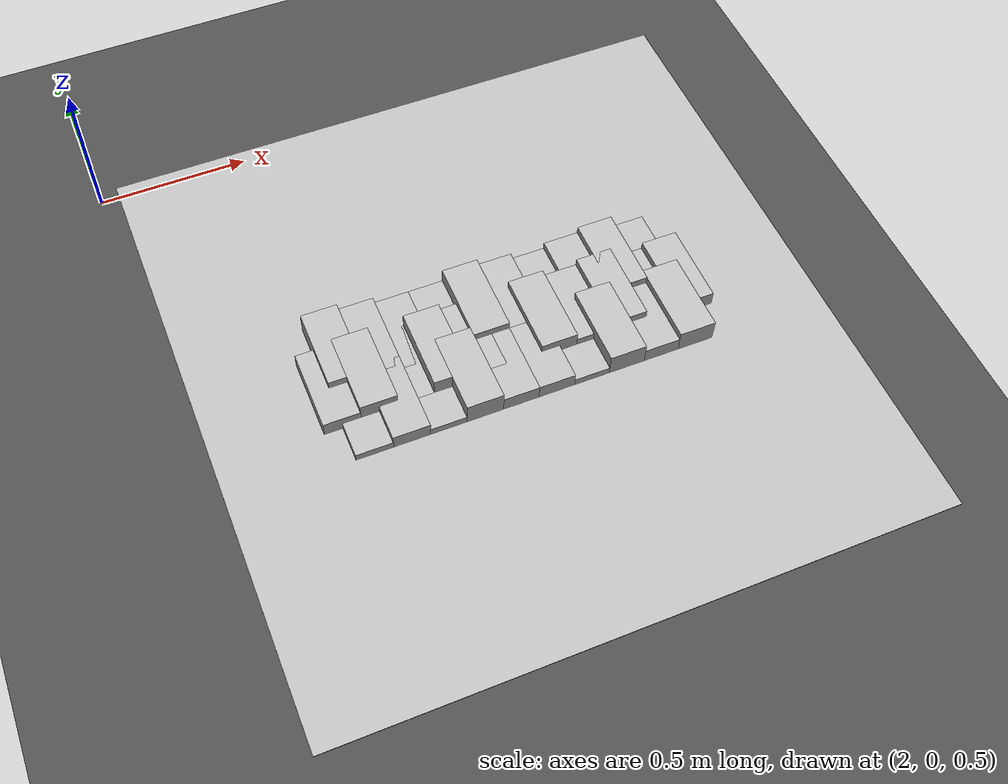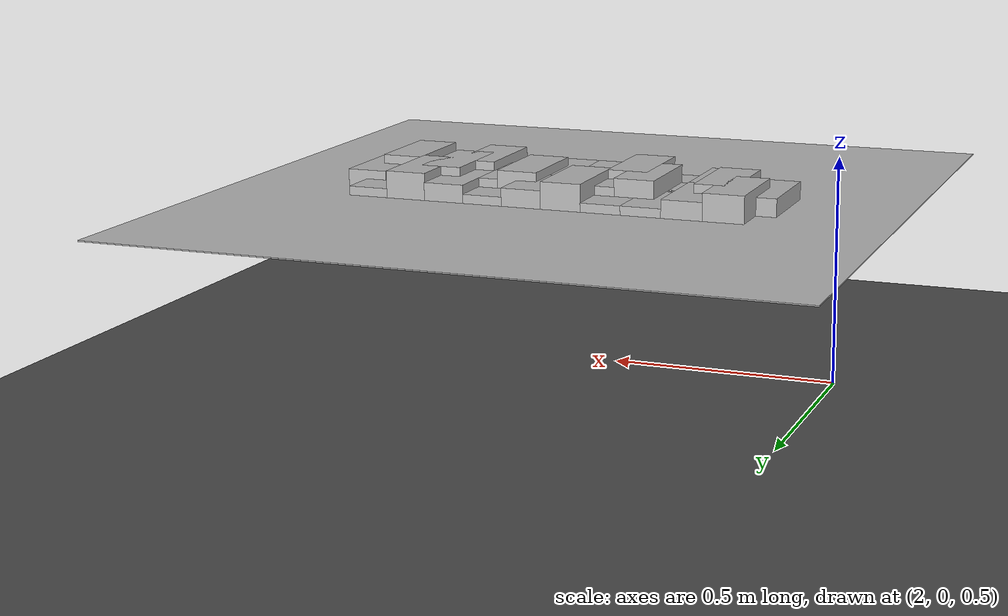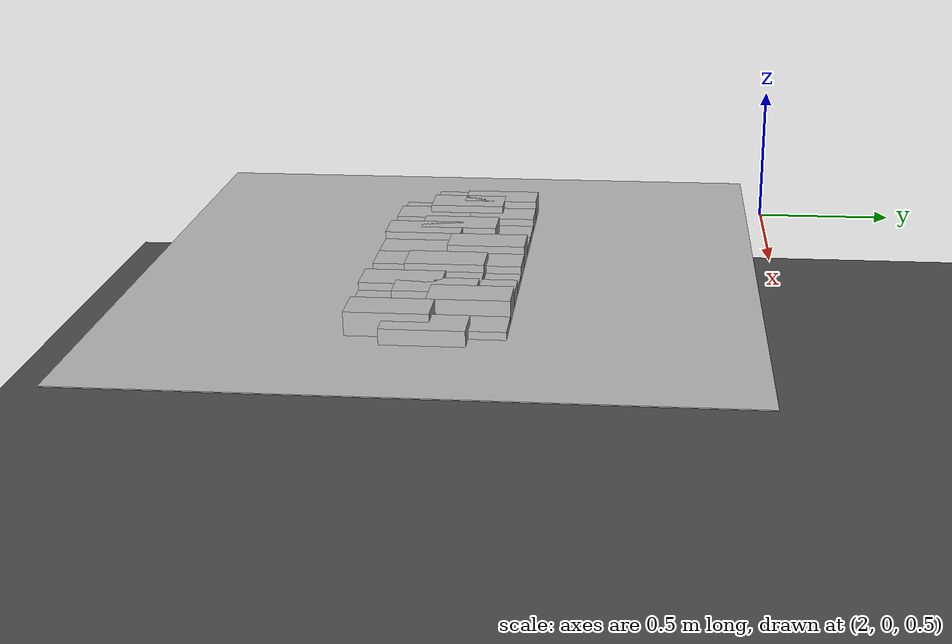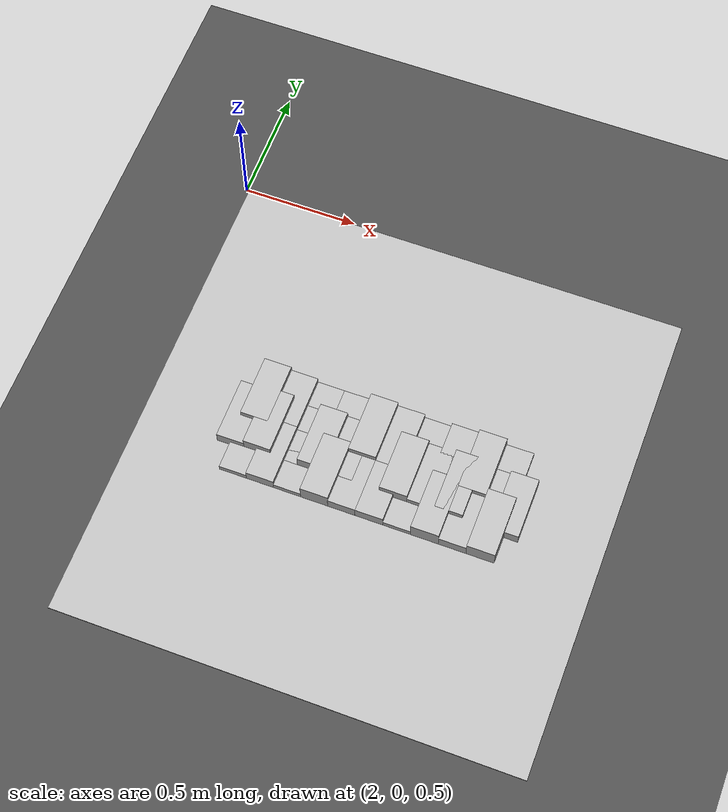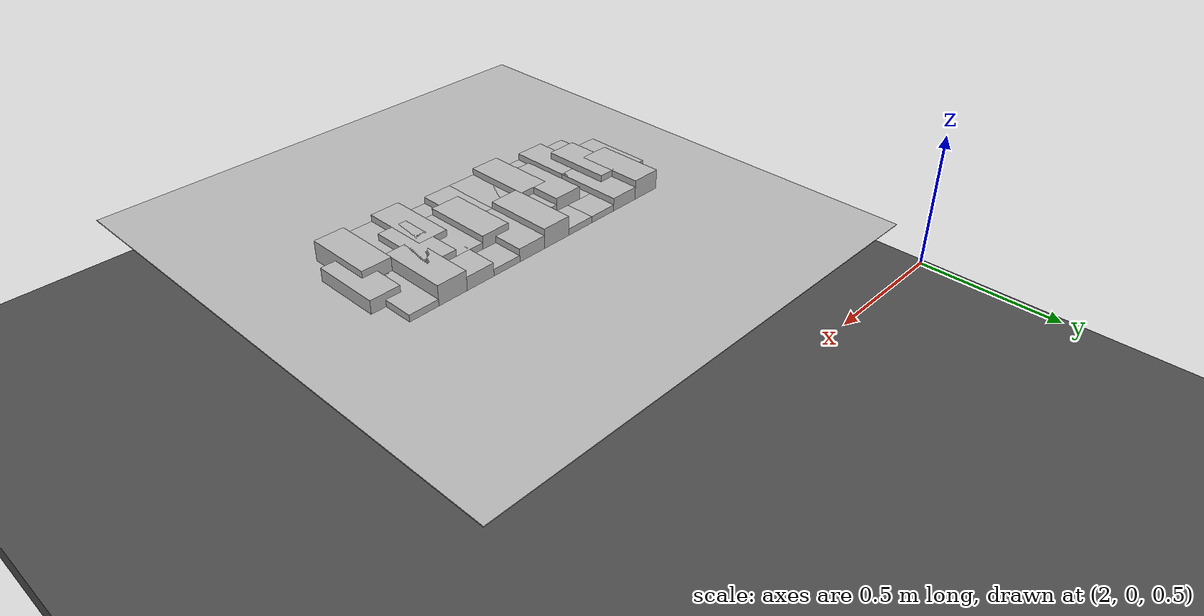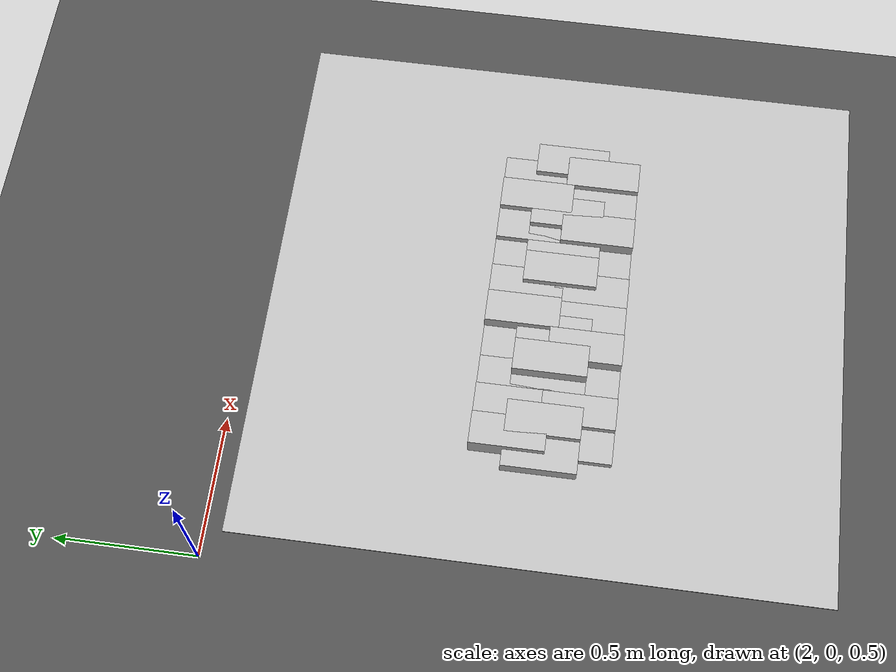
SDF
<sdf version="1.6">
 <world name="default">
  <model name="ground_plane">
   <static>1</static>
   <link name="link">
    <collision name="collision">
     <geometry><plane><normal>0 0 1</normal><size>100 100</size></plane></geometry>
     <surface><friction><ode><mu>100</mu><mu2>50</mu2></ode></friction></surface>
    </collision>
    <visual name="visual">
     <cast_shadows>0</cast_shadows>
     <geometry><plane><normal>0 0 1</normal><size>100 100</size></plane></geometry>
     <material>
      <script><uri>file://media/materials/scripts/gazebo.material</uri><name>Gazebo/Grey</name></script>
     </material>
    </visual>
   </link>
  </model>
  <model name="frc2016_roughterrain_0">
   <link name="link_clone_24">
    <pose>3.11638 -1.12587 -0.073164 0 -0 0</pose>
    <inertial>
     <inertia><ixx>nan</ixx><ixy>0</ixy><ixz>0</ixz><iyy>nan</iyy><iyz>0</iyz><izz>nan</izz></inertia>
     <mass>0</mass>
    </inertial>
    <visual name="row1_block5_md">
     <pose>0.05715 0.1143 0.10968 0 -0 0</pose>
     <geometry><box><size>0.115452 0.257474 0.0508</size></box></geometry>
     <material><shader type="pixel"/></material>
    </visual>
    <visual name="row1_block4_sm">
     <pose>0.17145 0.1143 0.09698 0 -0 0</pose>
     <geometry><box><size>0.115452 0.257474 0.0254</size></box></geometry>
     <material><shader type="pixel"/></material>
    </visual>
    <visual name="platform">
     <pose>0 0 0.08269 0 -0 0</pose>
     <geometry><box><size>1.91826 2.01688 0.003175</size></box></geometry>
     <material><shader type="pixel"/></material>
    </visual>
    <visual name="row1_block1_sm">
     <pose>0.51435 0.1143 0.09698 0 -0 0</pose>
     <geometry><box><size>0.115452 0.257474 0.0254</size></box></geometry>
     <material><shader type="pixel"/></material>
    </visual>
    <visual name="row1_block2_lg">
     <pose>0.40005 0.1143 0.12238 0 -0 0</pose>
     <geometry><box><size>0.115452 0.257474 0.0762</size></box></geometry>
     <material><shader type="pixel"/></material>
    </visual>
    <visual name="row1_block3_md">
     <pose>0.28575 0.1143 0.10968 0 -0 0</pose>
     <geometry><box><size>0.115452 0.257474 0.0508</size></box></geometry>
     <material><shader type="pixel"/></material>
    </visual>
    <visual name="row1_block6_lg">
     <pose>-0.05715 0.1143 0.12238 0 -0 0</pose>
     <geometry><box><size>0.115452 0.257474 0.0762</size></box></geometry>
     <material><shader type="pixel"/></material>
    </visual>
    <visual name="row1_block8_sm">
     <pose>-0.28575 0.1143 0.09698 0 -0 0</pose>
     <geometry><box><size>0.115452 0.257474 0.0254</size></box></geometry>
     <material><shader type="pixel"/></material>
    </visual>
    <visual name="row1_block7_sm">
     <pose>-0.17145 0.1143 0.09698 0 -0 0</pose>
     <geometry><box><size>0.115452 0.257474 0.0254</size></box></geometry>
     <material><shader type="pixel"/></material>
    </visual>
    <visual name="row1_block9_md">
     <pose>-0.40005 0.1143 0.10968 0 -0 0</pose>
     <geometry><box><size>0.115452 0.257474 0.0508</size></box></geometry>
     <material><shader type="pixel"/></material>
    </visual>
    <visual name="row1_block10_lg">
     <pose>-0.51435 0.1143 0.12238 0 -0 0</pose>
     <geometry><box><size>0.115452 0.257474 0.0762</size></box></geometry>
     <material><shader type="pixel"/></material>
    </visual>
    <visual name="row2_block1_md">
     <pose>0.5715 0 0.10968 0 -0 0</pose>
     <geometry><box><size>0.115452 0.257474 0.0508</size></box></geometry>
     <material><shader type="pixel"/></material>
    </visual>
    <visual name="row2_block2_sm">
     <pose>0.4572 0 0.09698 0 -0 0</pose>
     <geometry><box><size>0.115452 0.257474 0.0254</size></box></geometry>
     <material><shader type="pixel"/></material>
    </visual>
    <visual name="row2_block3_lg">
     <pose>0.3429 0 0.12238 0 -0 0</pose>
     <geometry><box><size>0.115452 0.257474 0.0762</size></box></geometry>
     <material><shader type="pixel"/></material>
    </visual>
    <visual name="row2_block4_md">
     <pose>0.2286 0 0.10968 0 -0 0</pose>
     <geometry><box><size>0.115452 0.257474 0.0508</size></box></geometry>
     <material><shader type="pixel"/></material>
    </visual>
    <visual name="row2_block5_lg">
     <pose>0.1143 0 0.12238 0 -0 0</pose>
     <geometry><box><size>0.115452 0.257474 0.0762</size></box></geometry>
     <material><shader type="pixel"/></material>
    </visual>
    <visual name="row2_block6_sm">
     <pose>0 0 0.09698 0 -0 0</pose>
     <geometry><box><size>0.115452 0.257474 0.0254</size></box></geometry>
     <material><shader type="pixel"/></material>
    </visual>
    <visual name="row2_block7_md">
     <pose>-0.1143 0 0.10968 0 -0 0</pose>
     <geometry><box><size>0.115452 0.257474 0.0508</size></box></geometry>
     <material><shader type="pixel"/></material>
    </visual>
    <visual name="row2_block8_lg">
     <pose>-0.2286 0 0.12238 0 -0 0</pose>
     <geometry><box><size>0.115452 0.257474 0.0762</size></box></geometry>
     <material><shader type="pixel"/></material>
    </visual>
    <visual name="row2_block9_sm">
     <pose>-0.3429 0 0.09698 0 -0 0</pose>
     <geometry><box><size>0.115452 0.257474 0.0254</size></box></geometry>
     <material><shader type="pixel"/></material>
    </visual>
    <visual name="row2_block10_lg">
     <pose>-0.4572 0 0.12238 0 -0 0</pose>
     <geometry><box><size>0.115452 0.257474 0.0762</size></box></geometry>
     <material><shader type="pixel"/></material>
    </visual>
    <visual name="row2_block11_md">
     <pose>-0.5715 0 0.10968 0 -0 0</pose>
     <geometry><box><size>0.115452 0.257474 0.0508</size></box></geometry>
     <material><shader type="pixel"/></material>
    </visual>
    <visual name="row3_block2_md">
     <pose>0.40005 -0.1143 0.10968 0 -0 0</pose>
     <geometry><box><size>0.115452 0.257474 0.0508</size></box></geometry>
     <material><shader type="pixel"/></material>
    </visual>
    <visual name="row3_block1_lg">
     <pose>0.51435 -0.1143 0.12238 0 -0 0</pose>
     <geometry><box><size>0.115452 0.257474 0.0762</size></box></geometry>
     <material><shader type="pixel"/></material>
    </visual>
    <visual name="row3_block3_lg">
     <pose>0.28575 -0.1143 0.12238 0 -0 0</pose>
     <geometry><box><size>0.115452 0.257474 0.0762</size></box></geometry>
     <material><shader type="pixel"/></material>
    </visual>
    <visual name="row3_block4_sm">
     <pose>0.17145 -0.1143 0.09698 0 -0 0</pose>
     <geometry><box><size>0.115452 0.257474 0.0254</size></box></geometry>
     <material><shader type="pixel"/></material>
    </visual>
    <visual name="row3_block5_md">
     <pose>0.05715 -0.1143 0.10968 0 -0 0</pose>
     <geometry><box><size>0.115452 0.257474 0.0508</size></box></geometry>
     <material><shader type="pixel"/></material>
    </visual>
    <visual name="row3_block6_md">
     <pose>-0.05715 -0.1143 0.10968 0 -0 0</pose>
     <geometry><box><size>0.115452 0.257474 0.0508</size></box></geometry>
     <material><shader type="pixel"/></material>
    </visual>
    <visual name="row3_block8_sm">
     <pose>-0.28575 -0.1143 0.09698 0 -0 0</pose>
     <geometry><box><size>0.115452 0.257474 0.0254</size></box></geometry>
     <material><shader type="pixel"/></material>
    </visual>
    <visual name="row3_block7_lg">
     <pose>-0.17145 -0.1143 0.12238 0 -0 0</pose>
     <geometry><box><size>0.115452 0.257474 0.0762</size></box></geometry>
     <material><shader type="pixel"/></material>
    </visual>
    <visual name="row3_block9_md">
     <pose>-0.40005 -0.1143 0.10968 0 -0 0</pose>
     <geometry><box><size>0.115452 0.257474 0.0508</size></box></geometry>
     <material><shader type="pixel"/></material>
    </visual>
    <visual name="row3_block10_sm">
     <pose>-0.51435 -0.1143 0.09698 0 -0 0</pose>
     <geometry><box><size>0.115452 0.257474 0.0254</size></box></geometry>
     <material><shader type="pixel"/></material>
    </visual>
    <collision name="row2_block5_lg_0">
     <pose>0.1143 0 0.12238 0 -0 0</pose>
     <geometry><box><size>0.115452 0.257474 0.0762</size></box></geometry>
     <surface>
      <friction>
       <ode><mu>1</mu><mu2>1</mu2><fdir1>0 0 0</fdir1><slip1>0</slip1><slip2>0</slip2></ode>
       <torsional>
        <coefficient>1</coefficient>
        <patch_radius>0</patch_radius>
        <surface_radius>0</surface_radius>
        <use_patch_radius>1</use_patch_radius>
        <ode><slip>0</slip></ode>
       </torsional>
      </friction>
      <bounce><restitution_coefficient>0</restitution_coefficient><threshold>1e+06</threshold></bounce>
      <contact>
       <collide_without_contact>0</collide_without_contact>
       <collide_without_contact_bitmask>1</collide_without_contact_bitmask>
       <collide_bitmask>1</collide_bitmask>
       <ode>
        <soft_cfm>0</soft_cfm>
        <soft_erp>0.2</soft_erp>
        <kp>1e+13</kp>
        <kd>1</kd>
        <max_vel>0.01</max_vel>
        <min_depth>0</min_depth>
       </ode>
       <bullet>
        <split_impulse>1</split_impulse>
        <split_impulse_penetration_threshold>-0.01</split_impulse_penetration_threshold>
        <soft_cfm>0</soft_cfm>
        <soft_erp>0.2</soft_erp>
        <kp>1e+13</kp>
        <kd>1</kd>
       </bullet>
      </contact>
     </surface>
    </collision>
    <collision name="platform_0">
     <pose>0 0 0.08269 0 -0 0</pose>
     <geometry><box><size>1.91826 2.01688 0.003175</size></box></geometry>
     <surface>
      <friction>
       <ode><mu>1</mu><mu2>1</mu2><fdir1>0 0 0</fdir1><slip1>0</slip1><slip2>0</slip2></ode>
       <torsional>
        <coefficient>1</coefficient>
        <patch_radius>0</patch_radius>
        <surface_radius>0</surface_radius>
        <use_patch_radius>1</use_patch_radius>
        <ode><slip>0</slip></ode>
       </torsional>
      </friction>
      <bounce><restitution_coefficient>0</restitution_coefficient><threshold>1e+06</threshold></bounce>
      <contact>
       <collide_without_contact>0</collide_without_contact>
       <collide_without_contact_bitmask>1</collide_without_contact_bitmask>
       <collide_bitmask>1</collide_bitmask>
       <ode>
        <soft_cfm>0</soft_cfm>
        <soft_erp>0.2</soft_erp>
        <kp>1e+13</kp>
        <kd>1</kd>
        <max_vel>0.01</max_vel>
        <min_depth>0</min_depth>
       </ode>
       <bullet>
        <split_impulse>1</split_impulse>
        <split_impulse_penetration_threshold>-0.01</split_impulse_penetration_threshold>
        <soft_cfm>0</soft_cfm>
        <soft_erp>0.2</soft_erp>
        <kp>1e+13</kp>
        <kd>1</kd>
       </bullet>
      </contact>
     </surface>
    </collision>
    <collision name="row1_block1_sm_0">
     <pose>0.51435 0.1143 0.09698 0 -0 0</pose>
     <geometry><box><size>0.115452 0.257474 0.0254</size></box></geometry>
     <surface>
      <friction>
       <ode><mu>1</mu><mu2>1</mu2><fdir1>0 0 0</fdir1><slip1>0</slip1><slip2>0</slip2></ode>
       <torsional>
        <coefficient>1</coefficient>
        <patch_radius>0</patch_radius>
        <surface_radius>0</surface_radius>
        <use_patch_radius>1</use_patch_radius>
        <ode><slip>0</slip></ode>
       </torsional>
      </friction>
      <bounce><restitution_coefficient>0</restitution_coefficient><threshold>1e+06</threshold></bounce>
      <contact>
       <collide_without_contact>0</collide_without_contact>
       <collide_without_contact_bitmask>1</collide_without_contact_bitmask>
       <collide_bitmask>1</collide_bitmask>
       <ode>
        <soft_cfm>0</soft_cfm>
        <soft_erp>0.2</soft_erp>
        <kp>1e+13</kp>
        <kd>1</kd>
        <max_vel>0.01</max_vel>
        <min_depth>0</min_depth>
       </ode>
       <bullet>
        <split_impulse>1</split_impulse>
        <split_impulse_penetration_threshold>-0.01</split_impulse_penetration_threshold>
        <soft_cfm>0</soft_cfm>
        <soft_erp>0.2</soft_erp>
        <kp>1e+13</kp>
        <kd>1</kd>
       </bullet>
      </contact>
     </surface>
    </collision>
    <collision name="row1_block5_md_0">
     <pose>0.05715 0.1143 0.10968 0 -0 0</pose>
     <geometry><box><size>0.115452 0.257474 0.0508</size></box></geometry>
     <surface>
      <friction>
       <ode><mu>1</mu><mu2>1</mu2><fdir1>0 0 0</fdir1><slip1>0</slip1><slip2>0</slip2></ode>
       <torsional>
        <coefficient>1</coefficient>
        <patch_radius>0</patch_radius>
        <surface_radius>0</surface_radius>
        <use_patch_radius>1</use_patch_radius>
        <ode><slip>0</slip></ode>
       </torsional>
      </friction>
      <bounce><restitution_coefficient>0</restitution_coefficient><threshold>1e+06</threshold></bounce>
      <contact>
       <collide_without_contact>0</collide_without_contact>
       <collide_without_contact_bitmask>1</collide_without_contact_bitmask>
       <collide_bitmask>1</collide_bitmask>
       <ode>
        <soft_cfm>0</soft_cfm>
        <soft_erp>0.2</soft_erp>
        <kp>1e+13</kp>
        <kd>1</kd>
        <max_vel>0.01</max_vel>
        <min_depth>0</min_depth>
       </ode>
       <bullet>
        <split_impulse>1</split_impulse>
        <split_impulse_penetration_threshold>-0.01</split_impulse_penetration_threshold>
        <soft_cfm>0</soft_cfm>
        <soft_erp>0.2</soft_erp>
        <kp>1e+13</kp>
        <kd>1</kd>
       </bullet>
      </contact>
     </surface>
    </collision>
    <collision name="row1_block3_md_0">
     <pose>0.28575 0.1143 0.10968 0 -0 0</pose>
     <geometry><box><size>0.115452 0.257474 0.0508</size></box></geometry>
     <surface>
      <friction>
       <ode><mu>1</mu><mu2>1</mu2><fdir1>0 0 0</fdir1><slip1>0</slip1><slip2>0</slip2></ode>
       <torsional>
        <coefficient>1</coefficient>
        <patch_radius>0</patch_radius>
        <surface_radius>0</surface_radius>
        <use_patch_radius>1</use_patch_radius>
        <ode><slip>0</slip></ode>
       </torsional>
      </friction>
      <bounce><restitution_coefficient>0</restitution_coefficient><threshold>1e+06</threshold></bounce>
      <contact>
       <collide_without_contact>0</collide_without_contact>
       <collide_without_contact_bitmask>1</collide_without_contact_bitmask>
       <collide_bitmask>1</collide_bitmask>
       <ode>
        <soft_cfm>0</soft_cfm>
        <soft_erp>0.2</soft_erp>
        <kp>1e+13</kp>
        <kd>1</kd>
        <max_vel>0.01</max_vel>
        <min_depth>0</min_depth>
       </ode>
       <bullet>
        <split_impulse>1</split_impulse>
        <split_impulse_penetration_threshold>-0.01</split_impulse_penetration_threshold>
        <soft_cfm>0</soft_cfm>
        <soft_erp>0.2</soft_erp>
        <kp>1e+13</kp>
        <kd>1</kd>
       </bullet>
      </contact>
     </surface>
    </collision>
    <collision name="row1_block4_sm_0">
     <pose>0.17145 0.1143 0.09698 0 -0 0</pose>
     <geometry><box><size>0.115452 0.257474 0.0254</size></box></geometry>
     <surface>
      <friction>
       <ode><mu>1</mu><mu2>1</mu2><fdir1>0 0 0</fdir1><slip1>0</slip1><slip2>0</slip2></ode>
       <torsional>
        <coefficient>1</coefficient>
        <patch_radius>0</patch_radius>
        <surface_radius>0</surface_radius>
        <use_patch_radius>1</use_patch_radius>
        <ode><slip>0</slip></ode>
       </torsional>
      </friction>
      <bounce><restitution_coefficient>0</restitution_coefficient><threshold>1e+06</threshold></bounce>
      <contact>
       <collide_without_contact>0</collide_without_contact>
       <collide_without_contact_bitmask>1</collide_without_contact_bitmask>
       <collide_bitmask>1</collide_bitmask>
       <ode>
        <soft_cfm>0</soft_cfm>
        <soft_erp>0.2</soft_erp>
        <kp>1e+13</kp>
        <kd>1</kd>
        <max_vel>0.01</max_vel>
        <min_depth>0</min_depth>
       </ode>
       <bullet>
        <split_impulse>1</split_impulse>
        <split_impulse_penetration_threshold>-0.01</split_impulse_penetration_threshold>
        <soft_cfm>0</soft_cfm>
        <soft_erp>0.2</soft_erp>
        <kp>1e+13</kp>
        <kd>1</kd>
       </bullet>
      </contact>
     </surface>
    </collision>
    <collision name="row1_block2_lg_0">
     <pose>0.40005 0.1143 0.12238 0 -0 0</pose>
     <geometry><box><size>0.115452 0.257474 0.0762</size></box></geometry>
     <surface>
      <friction>
       <ode><mu>1</mu><mu2>1</mu2><fdir1>0 0 0</fdir1><slip1>0</slip1><slip2>0</slip2></ode>
       <torsional>
        <coefficient>1</coefficient>
        <patch_radius>0</patch_radius>
        <surface_radius>0</surface_radius>
        <use_patch_radius>1</use_patch_radius>
        <ode><slip>0</slip></ode>
       </torsional>
      </friction>
      <bounce><restitution_coefficient>0</restitution_coefficient><threshold>1e+06</threshold></bounce>
      <contact>
       <collide_without_contact>0</collide_without_contact>
       <collide_without_contact_bitmask>1</collide_without_contact_bitmask>
       <collide_bitmask>1</collide_bitmask>
       <ode>
        <soft_cfm>0</soft_cfm>
        <soft_erp>0.2</soft_erp>
        <kp>1e+13</kp>
        <kd>1</kd>
        <max_vel>0.01</max_vel>
        <min_depth>0</min_depth>
       </ode>
       <bullet>
        <split_impulse>1</split_impulse>
        <split_impulse_penetration_threshold>-0.01</split_impulse_penetration_threshold>
        <soft_cfm>0</soft_cfm>
        <soft_erp>0.2</soft_erp>
        <kp>1e+13</kp>
        <kd>1</kd>
       </bullet>
      </contact>
     </surface>
    </collision>
    <collision name="row1_block6_lg_0">
     <pose>-0.05715 0.1143 0.12238 0 -0 0</pose>
     <geometry><box><size>0.115452 0.257474 0.0762</size></box></geometry>
     <surface>
      <friction>
       <ode><mu>1</mu><mu2>1</mu2><fdir1>0 0 0</fdir1><slip1>0</slip1><slip2>0</slip2></ode>
       <torsional>
        <coefficient>1</coefficient>
        <patch_radius>0</patch_radius>
        <surface_radius>0</surface_radius>
        <use_patch_radius>1</use_patch_radius>
        <ode><slip>0</slip></ode>
       </torsional>
      </friction>
      <bounce><restitution_coefficient>0</restitution_coefficient><threshold>1e+06</threshold></bounce>
      <contact>
       <collide_without_contact>0</collide_without_contact>
       <collide_without_contact_bitmask>1</collide_without_contact_bitmask>
       <collide_bitmask>1</collide_bitmask>
       <ode>
        <soft_cfm>0</soft_cfm>
        <soft_erp>0.2</soft_erp>
        <kp>1e+13</kp>
        <kd>1</kd>
        <max_vel>0.01</max_vel>
        <min_depth>0</min_depth>
       </ode>
       <bullet>
        <split_impulse>1</split_impulse>
        <split_impulse_penetration_threshold>-0.01</split_impulse_penetration_threshold>
        <soft_cfm>0</soft_cfm>
        <soft_erp>0.2</soft_erp>
        <kp>1e+13</kp>
        <kd>1</kd>
       </bullet>
      </contact>
     </surface>
    </collision>
    <collision name="row1_block7_sm_0">
     <pose>-0.17145 0.1143 0.09698 0 -0 0</pose>
     <geometry><box><size>0.115452 0.257474 0.0254</size></box></geometry>
     <surface>
      <friction>
       <ode><mu>1</mu><mu2>1</mu2><fdir1>0 0 0</fdir1><slip1>0</slip1><slip2>0</slip2></ode>
       <torsional>
        <coefficient>1</coefficient>
        <patch_radius>0</patch_radius>
        <surface_radius>0</surface_radius>
        <use_patch_radius>1</use_patch_radius>
        <ode><slip>0</slip></ode>
       </torsional>
      </friction>
      <bounce><restitution_coefficient>0</restitution_coefficient><threshold>1e+06</threshold></bounce>
      <contact>
       <collide_without_contact>0</collide_without_contact>
       <collide_without_contact_bitmask>1</collide_without_contact_bitmask>
       <collide_bitmask>1</collide_bitmask>
       <ode>
        <soft_cfm>0</soft_cfm>
        <soft_erp>0.2</soft_erp>
        <kp>1e+13</kp>
        <kd>1</kd>
        <max_vel>0.01</max_vel>
        <min_depth>0</min_depth>
       </ode>
       <bullet>
        <split_impulse>1</split_impulse>
        <split_impulse_penetration_threshold>-0.01</split_impulse_penetration_threshold>
        <soft_cfm>0</soft_cfm>
        <soft_erp>0.2</soft_erp>
        <kp>1e+13</kp>
        <kd>1</kd>
       </bullet>
      </contact>
     </surface>
    </collision>
    <collision name="row1_block10_lg_0">
     <pose>-0.51435 0.1143 0.12238 0 -0 0</pose>
     <geometry><box><size>0.115452 0.257474 0.0762</size></box></geometry>
     <surface>
      <friction>
       <ode><mu>1</mu><mu2>1</mu2><fdir1>0 0 0</fdir1><slip1>0</slip1><slip2>0</slip2></ode>
       <torsional>
        <coefficient>1</coefficient>
        <patch_radius>0</patch_radius>
        <surface_radius>0</surface_radius>
        <use_patch_radius>1</use_patch_radius>
        <ode><slip>0</slip></ode>
       </torsional>
      </friction>
      <bounce><restitution_coefficient>0</restitution_coefficient><threshold>1e+06</threshold></bounce>
      <contact>
       <collide_without_contact>0</collide_without_contact>
       <collide_without_contact_bitmask>1</collide_without_contact_bitmask>
       <collide_bitmask>1</collide_bitmask>
       <ode>
        <soft_cfm>0</soft_cfm>
        <soft_erp>0.2</soft_erp>
        <kp>1e+13</kp>
        <kd>1</kd>
        <max_vel>0.01</max_vel>
        <min_depth>0</min_depth>
       </ode>
       <bullet>
        <split_impulse>1</split_impulse>
        <split_impulse_penetration_threshold>-0.01</split_impulse_penetration_threshold>
        <soft_cfm>0</soft_cfm>
        <soft_erp>0.2</soft_erp>
        <kp>1e+13</kp>
        <kd>1</kd>
       </bullet>
      </contact>
     </surface>
    </collision>
    <collision name="row1_block8_sm_0">
     <pose>-0.28575 0.1143 0.09698 0 -0 0</pose>
     <geometry><box><size>0.115452 0.257474 0.0254</size></box></geometry>
     <surface>
      <friction>
       <ode><mu>1</mu><mu2>1</mu2><fdir1>0 0 0</fdir1><slip1>0</slip1><slip2>0</slip2></ode>
       <torsional>
        <coefficient>1</coefficient>
        <patch_radius>0</patch_radius>
        <surface_radius>0</surface_radius>
        <use_patch_radius>1</use_patch_radius>
        <ode><slip>0</slip></ode>
       </torsional>
      </friction>
      <bounce><restitution_coefficient>0</restitution_coefficient><threshold>1e+06</threshold></bounce>
      <contact>
       <collide_without_contact>0</collide_without_contact>
       <collide_without_contact_bitmask>1</collide_without_contact_bitmask>
       <collide_bitmask>1</collide_bitmask>
       <ode>
        <soft_cfm>0</soft_cfm>
        <soft_erp>0.2</soft_erp>
        <kp>1e+13</kp>
        <kd>1</kd>
        <max_vel>0.01</max_vel>
        <min_depth>0</min_depth>
       </ode>
       <bullet>
        <split_impulse>1</split_impulse>
        <split_impulse_penetration_threshold>-0.01</split_impulse_penetration_threshold>
        <soft_cfm>0</soft_cfm>
        <soft_erp>0.2</soft_erp>
        <kp>1e+13</kp>
        <kd>1</kd>
       </bullet>
      </contact>
     </surface>
    </collision>
    <collision name="row1_block9_md_0">
     <pose>-0.40005 0.1143 0.10968 0 -0 0</pose>
     <geometry><box><size>0.115452 0.257474 0.0508</size></box></geometry>
     <surface>
      <friction>
       <ode><mu>1</mu><mu2>1</mu2><fdir1>0 0 0</fdir1><slip1>0</slip1><slip2>0</slip2></ode>
       <torsional>
        <coefficient>1</coefficient>
        <patch_radius>0</patch_radius>
        <surface_radius>0</surface_radius>
        <use_patch_radius>1</use_patch_radius>
        <ode><slip>0</slip></ode>
       </torsional>
      </friction>
      <bounce><restitution_coefficient>0</restitution_coefficient><threshold>1e+06</threshold></bounce>
      <contact>
       <collide_without_contact>0</collide_without_contact>
       <collide_without_contact_bitmask>1</collide_without_contact_bitmask>
       <collide_bitmask>1</collide_bitmask>
       <ode>
        <soft_cfm>0</soft_cfm>
        <soft_erp>0.2</soft_erp>
        <kp>1e+13</kp>
        <kd>1</kd>
        <max_vel>0.01</max_vel>
        <min_depth>0</min_depth>
       </ode>
       <bullet>
        <split_impulse>1</split_impulse>
        <split_impulse_penetration_threshold>-0.01</split_impulse_penetration_threshold>
        <soft_cfm>0</soft_cfm>
        <soft_erp>0.2</soft_erp>
        <kp>1e+13</kp>
        <kd>1</kd>
       </bullet>
      </contact>
     </surface>
    </collision>
    <collision name="row2_block1_md_0">
     <pose>0.5715 0 0.10968 0 -0 0</pose>
     <geometry><box><size>0.115452 0.257474 0.0508</size></box></geometry>
     <surface>
      <friction>
       <ode><mu>1</mu><mu2>1</mu2><fdir1>0 0 0</fdir1><slip1>0</slip1><slip2>0</slip2></ode>
       <torsional>
        <coefficient>1</coefficient>
        <patch_radius>0</patch_radius>
        <surface_radius>0</surface_radius>
        <use_patch_radius>1</use_patch_radius>
        <ode><slip>0</slip></ode>
       </torsional>
      </friction>
      <bounce><restitution_coefficient>0</restitution_coefficient><threshold>1e+06</threshold></bounce>
      <contact>
       <collide_without_contact>0</collide_without_contact>
       <collide_without_contact_bitmask>1</collide_without_contact_bitmask>
       <collide_bitmask>1</collide_bitmask>
       <ode>
        <soft_cfm>0</soft_cfm>
        <soft_erp>0.2</soft_erp>
        <kp>1e+13</kp>
        <kd>1</kd>
        <max_vel>0.01</max_vel>
        <min_depth>0</min_depth>
       </ode>
       <bullet>
        <split_impulse>1</split_impulse>
        <split_impulse_penetration_threshold>-0.01</split_impulse_penetration_threshold>
        <soft_cfm>0</soft_cfm>
        <soft_erp>0.2</soft_erp>
        <kp>1e+13</kp>
        <kd>1</kd>
       </bullet>
      </contact>
     </surface>
    </collision>
    <collision name="row2_block2_sm_0">
     <pose>0.4572 0 0.09698 0 -0 0</pose>
     <geometry><box><size>0.115452 0.257474 0.0254</size></box></geometry>
     <surface>
      <friction>
       <ode><mu>1</mu><mu2>1</mu2><fdir1>0 0 0</fdir1><slip1>0</slip1><slip2>0</slip2></ode>
       <torsional>
        <coefficient>1</coefficient>
        <patch_radius>0</patch_radius>
        <surface_radius>0</surface_radius>
        <use_patch_radius>1</use_patch_radius>
        <ode><slip>0</slip></ode>
       </torsional>
      </friction>
      <bounce><restitution_coefficient>0</restitution_coefficient><threshold>1e+06</threshold></bounce>
      <contact>
       <collide_without_contact>0</collide_without_contact>
       <collide_without_contact_bitmask>1</collide_without_contact_bitmask>
       <collide_bitmask>1</collide_bitmask>
       <ode>
        <soft_cfm>0</soft_cfm>
        <soft_erp>0.2</soft_erp>
        <kp>1e+13</kp>
        <kd>1</kd>
        <max_vel>0.01</max_vel>
        <min_depth>0</min_depth>
       </ode>
       <bullet>
        <split_impulse>1</split_impulse>
        <split_impulse_penetration_threshold>-0.01</split_impulse_penetration_threshold>
        <soft_cfm>0</soft_cfm>
        <soft_erp>0.2</soft_erp>
        <kp>1e+13</kp>
        <kd>1</kd>
       </bullet>
      </contact>
     </surface>
    </collision>
    <collision name="row2_block4_md_0">
     <pose>0.2286 0 0.10968 0 -0 0</pose>
     <geometry><box><size>0.115452 0.257474 0.0508</size></box></geometry>
     <surface>
      <friction>
       <ode><mu>1</mu><mu2>1</mu2><fdir1>0 0 0</fdir1><slip1>0</slip1><slip2>0</slip2></ode>
       <torsional>
        <coefficient>1</coefficient>
        <patch_radius>0</patch_radius>
        <surface_radius>0</surface_radius>
        <use_patch_radius>1</use_patch_radius>
        <ode><slip>0</slip></ode>
       </torsional>
      </friction>
      <bounce><restitution_coefficient>0</restitution_coefficient><threshold>1e+06</threshold></bounce>
      <contact>
       <collide_without_contact>0</collide_without_contact>
       <collide_without_contact_bitmask>1</collide_without_contact_bitmask>
       <collide_bitmask>1</collide_bitmask>
       <ode>
        <soft_cfm>0</soft_cfm>
        <soft_erp>0.2</soft_erp>
        <kp>1e+13</kp>
        <kd>1</kd>
        <max_vel>0.01</max_vel>
        <min_depth>0</min_depth>
       </ode>
       <bullet>
        <split_impulse>1</split_impulse>
        <split_impulse_penetration_threshold>-0.01</split_impulse_penetration_threshold>
        <soft_cfm>0</soft_cfm>
        <soft_erp>0.2</soft_erp>
        <kp>1e+13</kp>
        <kd>1</kd>
       </bullet>
      </contact>
     </surface>
    </collision>
    <collision name="row2_block3_lg_0">
     <pose>0.3429 0 0.12238 0 -0 0</pose>
     <geometry><box><size>0.115452 0.257474 0.0762</size></box></geometry>
     <surface>
      <friction>
       <ode><mu>1</mu><mu2>1</mu2><fdir1>0 0 0</fdir1><slip1>0</slip1><slip2>0</slip2></ode>
       <torsional>
        <coefficient>1</coefficient>
        <patch_radius>0</patch_radius>
        <surface_radius>0</surface_radius>
        <use_patch_radius>1</use_patch_radius>
        <ode><slip>0</slip></ode>
       </torsional>
      </friction>
      <bounce><restitution_coefficient>0</restitution_coefficient><threshold>1e+06</threshold></bounce>
      <contact>
       <collide_without_contact>0</collide_without_contact>
       <collide_without_contact_bitmask>1</collide_without_contact_bitmask>
       <collide_bitmask>1</collide_bitmask>
       <ode>
        <soft_cfm>0</soft_cfm>
        <soft_erp>0.2</soft_erp>
        <kp>1e+13</kp>
        <kd>1</kd>
        <max_vel>0.01</max_vel>
        <min_depth>0</min_depth>
       </ode>
       <bullet>
        <split_impulse>1</split_impulse>
        <split_impulse_penetration_threshold>-0.01</split_impulse_penetration_threshold>
        <soft_cfm>0</soft_cfm>
        <soft_erp>0.2</soft_erp>
        <kp>1e+13</kp>
        <kd>1</kd>
       </bullet>
      </contact>
     </surface>
    </collision>
    <collision name="row2_block11_md_0">
     <pose>-0.5715 0 0.10968 0 -0 0</pose>
     <geometry><box><size>0.115452 0.257474 0.0508</size></box></geometry>
     <surface>
      <friction>
       <ode><mu>1</mu><mu2>1</mu2><fdir1>0 0 0</fdir1><slip1>0</slip1><slip2>0</slip2></ode>
       <torsional>
        <coefficient>1</coefficient>
        <patch_radius>0</patch_radius>
        <surface_radius>0</surface_radius>
        <use_patch_radius>1</use_patch_radius>
        <ode><slip>0</slip></ode>
       </torsional>
      </friction>
      <bounce><restitution_coefficient>0</restitution_coefficient><threshold>1e+06</threshold></bounce>
      <contact>
       <collide_without_contact>0</collide_without_contact>
       <collide_without_contact_bitmask>1</collide_without_contact_bitmask>
       <collide_bitmask>1</collide_bitmask>
       <ode>
        <soft_cfm>0</soft_cfm>
        <soft_erp>0.2</soft_erp>
        <kp>1e+13</kp>
        <kd>1</kd>
        <max_vel>0.01</max_vel>
        <min_depth>0</min_depth>
       </ode>
       <bullet>
        <split_impulse>1</split_impulse>
        <split_impulse_penetration_threshold>-0.01</split_impulse_penetration_threshold>
        <soft_cfm>0</soft_cfm>
        <soft_erp>0.2</soft_erp>
        <kp>1e+13</kp>
        <kd>1</kd>
       </bullet>
      </contact>
     </surface>
    </collision>
    <collision name="row2_block6_sm_0">
     <pose>0 0 0.09698 0 -0 0</pose>
     <geometry><box><size>0.115452 0.257474 0.0254</size></box></geometry>
     <surface>
      <friction>
       <ode><mu>1</mu><mu2>1</mu2><fdir1>0 0 0</fdir1><slip1>0</slip1><slip2>0</slip2></ode>
       <torsional>
        <coefficient>1</coefficient>
        <patch_radius>0</patch_radius>
        <surface_radius>0</surface_radius>
        <use_patch_radius>1</use_patch_radius>
        <ode><slip>0</slip></ode>
       </torsional>
      </friction>
      <bounce><restitution_coefficient>0</restitution_coefficient><threshold>1e+06</threshold></bounce>
      <contact>
       <collide_without_contact>0</collide_without_contact>
       <collide_without_contact_bitmask>1</collide_without_contact_bitmask>
       <collide_bitmask>1</collide_bitmask>
       <ode>
        <soft_cfm>0</soft_cfm>
        <soft_erp>0.2</soft_erp>
        <kp>1e+13</kp>
        <kd>1</kd>
        <max_vel>0.01</max_vel>
        <min_depth>0</min_depth>
       </ode>
       <bullet>
        <split_impulse>1</split_impulse>
        <split_impulse_penetration_threshold>-0.01</split_impulse_penetration_threshold>
        <soft_cfm>0</soft_cfm>
        <soft_erp>0.2</soft_erp>
        <kp>1e+13</kp>
        <kd>1</kd>
       </bullet>
      </contact>
     </surface>
    </collision>
    <collision name="row2_block7_md_0">
     <pose>-0.1143 0 0.10968 0 -0 0</pose>
     <geometry><box><size>0.115452 0.257474 0.0508</size></box></geometry>
     <surface>
      <friction>
       <ode><mu>1</mu><mu2>1</mu2><fdir1>0 0 0</fdir1><slip1>0</slip1><slip2>0</slip2></ode>
       <torsional>
        <coefficient>1</coefficient>
        <patch_radius>0</patch_radius>
        <surface_radius>0</surface_radius>
        <use_patch_radius>1</use_patch_radius>
        <ode><slip>0</slip></ode>
       </torsional>
      </friction>
      <bounce><restitution_coefficient>0</restitution_coefficient><threshold>1e+06</threshold></bounce>
      <contact>
       <collide_without_contact>0</collide_without_contact>
       <collide_without_contact_bitmask>1</collide_without_contact_bitmask>
       <collide_bitmask>1</collide_bitmask>
       <ode>
        <soft_cfm>0</soft_cfm>
        <soft_erp>0.2</soft_erp>
        <kp>1e+13</kp>
        <kd>1</kd>
        <max_vel>0.01</max_vel>
        <min_depth>0</min_depth>
       </ode>
       <bullet>
        <split_impulse>1</split_impulse>
        <split_impulse_penetration_threshold>-0.01</split_impulse_penetration_threshold>
        <soft_cfm>0</soft_cfm>
        <soft_erp>0.2</soft_erp>
        <kp>1e+13</kp>
        <kd>1</kd>
       </bullet>
      </contact>
     </surface>
    </collision>
    <collision name="row2_block10_lg_0">
     <pose>-0.4572 0 0.12238 0 -0 0</pose>
     <geometry><box><size>0.115452 0.257474 0.0762</size></box></geometry>
     <surface>
      <friction>
       <ode><mu>1</mu><mu2>1</mu2><fdir1>0 0 0</fdir1><slip1>0</slip1><slip2>0</slip2></ode>
       <torsional>
        <coefficient>1</coefficient>
        <patch_radius>0</patch_radius>
        <surface_radius>0</surface_radius>
        <use_patch_radius>1</use_patch_radius>
        <ode><slip>0</slip></ode>
       </torsional>
      </friction>
      <bounce><restitution_coefficient>0</restitution_coefficient><threshold>1e+06</threshold></bounce>
      <contact>
       <collide_without_contact>0</collide_without_contact>
       <collide_without_contact_bitmask>1</collide_without_contact_bitmask>
       <collide_bitmask>1</collide_bitmask>
       <ode>
        <soft_cfm>0</soft_cfm>
        <soft_erp>0.2</soft_erp>
        <kp>1e+13</kp>
        <kd>1</kd>
        <max_vel>0.01</max_vel>
        <min_depth>0</min_depth>
       </ode>
       <bullet>
        <split_impulse>1</split_impulse>
        <split_impulse_penetration_threshold>-0.01</split_impulse_penetration_threshold>
        <soft_cfm>0</soft_cfm>
        <soft_erp>0.2</soft_erp>
        <kp>1e+13</kp>
        <kd>1</kd>
       </bullet>
      </contact>
     </surface>
    </collision>
    <collision name="row2_block8_lg_0">
     <pose>-0.2286 0 0.12238 0 -0 0</pose>
     <geometry><box><size>0.115452 0.257474 0.0762</size></box></geometry>
     <surface>
      <friction>
       <ode><mu>1</mu><mu2>1</mu2><fdir1>0 0 0</fdir1><slip1>0</slip1><slip2>0</slip2></ode>
       <torsional>
        <coefficient>1</coefficient>
        <patch_radius>0</patch_radius>
        <surface_radius>0</surface_radius>
        <use_patch_radius>1</use_patch_radius>
        <ode><slip>0</slip></ode>
       </torsional>
      </friction>
      <bounce><restitution_coefficient>0</restitution_coefficient><threshold>1e+06</threshold></bounce>
      <contact>
       <collide_without_contact>0</collide_without_contact>
       <collide_without_contact_bitmask>1</collide_without_contact_bitmask>
       <collide_bitmask>1</collide_bitmask>
       <ode>
        <soft_cfm>0</soft_cfm>
        <soft_erp>0.2</soft_erp>
        <kp>1e+13</kp>
        <kd>1</kd>
        <max_vel>0.01</max_vel>
        <min_depth>0</min_depth>
       </ode>
       <bullet>
        <split_impulse>1</split_impulse>
        <split_impulse_penetration_threshold>-0.01</split_impulse_penetration_threshold>
        <soft_cfm>0</soft_cfm>
        <soft_erp>0.2</soft_erp>
        <kp>1e+13</kp>
        <kd>1</kd>
       </bullet>
      </contact>
     </surface>
    </collision>
    <collision name="row2_block9_sm_0">
     <pose>-0.3429 0 0.09698 0 -0 0</pose>
     <geometry><box><size>0.115452 0.257474 0.0254</size></box></geometry>
     <surface>
      <friction>
       <ode><mu>1</mu><mu2>1</mu2><fdir1>0 0 0</fdir1><slip1>0</slip1><slip2>0</slip2></ode>
       <torsional>
        <coefficient>1</coefficient>
        <patch_radius>0</patch_radius>
        <surface_radius>0</surface_radius>
        <use_patch_radius>1</use_patch_radius>
        <ode><slip>0</slip></ode>
       </torsional>
      </friction>
      <bounce><restitution_coefficient>0</restitution_coefficient><threshold>1e+06</threshold></bounce>
      <contact>
       <collide_without_contact>0</collide_without_contact>
       <collide_without_contact_bitmask>1</collide_without_contact_bitmask>
       <collide_bitmask>1</collide_bitmask>
       <ode>
        <soft_cfm>0</soft_cfm>
        <soft_erp>0.2</soft_erp>
        <kp>1e+13</kp>
        <kd>1</kd>
        <max_vel>0.01</max_vel>
        <min_depth>0</min_depth>
       </ode>
       <bullet>
        <split_impulse>1</split_impulse>
        <split_impulse_penetration_threshold>-0.01</split_impulse_penetration_threshold>
        <soft_cfm>0</soft_cfm>
        <soft_erp>0.2</soft_erp>
        <kp>1e+13</kp>
        <kd>1</kd>
       </bullet>
      </contact>
     </surface>
    </collision>
    <collision name="row3_block2_md_0">
     <pose>0.40005 -0.1143 0.10968 0 -0 0</pose>
     <geometry><box><size>0.115452 0.257474 0.0508</size></box></geometry>
     <surface>
      <friction>
       <ode><mu>1</mu><mu2>1</mu2><fdir1>0 0 0</fdir1><slip1>0</slip1><slip2>0</slip2></ode>
       <torsional>
        <coefficient>1</coefficient>
        <patch_radius>0</patch_radius>
        <surface_radius>0</surface_radius>
        <use_patch_radius>1</use_patch_radius>
        <ode><slip>0</slip></ode>
       </torsional>
      </friction>
      <bounce><restitution_coefficient>0</restitution_coefficient><threshold>1e+06</threshold></bounce>
      <contact>
       <collide_without_contact>0</collide_without_contact>
       <collide_without_contact_bitmask>1</collide_without_contact_bitmask>
       <collide_bitmask>1</collide_bitmask>
       <ode>
        <soft_cfm>0</soft_cfm>
        <soft_erp>0.2</soft_erp>
        <kp>1e+13</kp>
        <kd>1</kd>
        <max_vel>0.01</max_vel>
        <min_depth>0</min_depth>
       </ode>
       <bullet>
        <split_impulse>1</split_impulse>
        <split_impulse_penetration_threshold>-0.01</split_impulse_penetration_threshold>
        <soft_cfm>0</soft_cfm>
        <soft_erp>0.2</soft_erp>
        <kp>1e+13</kp>
        <kd>1</kd>
       </bullet>
      </contact>
     </surface>
    </collision>
    <collision name="row3_block1_lg_0">
     <pose>0.51435 -0.1143 0.12238 0 -0 0</pose>
     <geometry><box><size>0.115452 0.257474 0.0762</size></box></geometry>
     <surface>
      <friction>
       <ode><mu>1</mu><mu2>1</mu2><fdir1>0 0 0</fdir1><slip1>0</slip1><slip2>0</slip2></ode>
       <torsional>
        <coefficient>1</coefficient>
        <patch_radius>0</patch_radius>
        <surface_radius>0</surface_radius>
        <use_patch_radius>1</use_patch_radius>
        <ode><slip>0</slip></ode>
       </torsional>
      </friction>
      <bounce><restitution_coefficient>0</restitution_coefficient><threshold>1e+06</threshold></bounce>
      <contact>
       <collide_without_contact>0</collide_without_contact>
       <collide_without_contact_bitmask>1</collide_without_contact_bitmask>
       <collide_bitmask>1</collide_bitmask>
       <ode>
        <soft_cfm>0</soft_cfm>
        <soft_erp>0.2</soft_erp>
        <kp>1e+13</kp>
        <kd>1</kd>
        <max_vel>0.01</max_vel>
        <min_depth>0</min_depth>
       </ode>
       <bullet>
        <split_impulse>1</split_impulse>
        <split_impulse_penetration_threshold>-0.01</split_impulse_penetration_threshold>
        <soft_cfm>0</soft_cfm>
        <soft_erp>0.2</soft_erp>
        <kp>1e+13</kp>
        <kd>1</kd>
       </bullet>
      </contact>
     </surface>
    </collision>
    <collision name="row3_block4_sm_0">
     <pose>0.17145 -0.1143 0.09698 0 -0 0</pose>
     <geometry><box><size>0.115452 0.257474 0.0254</size></box></geometry>
     <surface>
      <friction>
       <ode><mu>1</mu><mu2>1</mu2><fdir1>0 0 0</fdir1><slip1>0</slip1><slip2>0</slip2></ode>
       <torsional>
        <coefficient>1</coefficient>
        <patch_radius>0</patch_radius>
        <surface_radius>0</surface_radius>
        <use_patch_radius>1</use_patch_radius>
        <ode><slip>0</slip></ode>
       </torsional>
      </friction>
      <bounce><restitution_coefficient>0</restitution_coefficient><threshold>1e+06</threshold></bounce>
      <contact>
       <collide_without_contact>0</collide_without_contact>
       <collide_without_contact_bitmask>1</collide_without_contact_bitmask>
       <collide_bitmask>1</collide_bitmask>
       <ode>
        <soft_cfm>0</soft_cfm>
        <soft_erp>0.2</soft_erp>
        <kp>1e+13</kp>
        <kd>1</kd>
        <max_vel>0.01</max_vel>
        <min_depth>0</min_depth>
       </ode>
       <bullet>
        <split_impulse>1</split_impulse>
        <split_impulse_penetration_threshold>-0.01</split_impulse_penetration_threshold>
        <soft_cfm>0</soft_cfm>
        <soft_erp>0.2</soft_erp>
        <kp>1e+13</kp>
        <kd>1</kd>
       </bullet>
      </contact>
     </surface>
    </collision>
    <collision name="row3_block3_lg_0">
     <pose>0.28575 -0.1143 0.12238 0 -0 0</pose>
     <geometry><box><size>0.115452 0.257474 0.0762</size></box></geometry>
     <surface>
      <friction>
       <ode><mu>1</mu><mu2>1</mu2><fdir1>0 0 0</fdir1><slip1>0</slip1><slip2>0</slip2></ode>
       <torsional>
        <coefficient>1</coefficient>
        <patch_radius>0</patch_radius>
        <surface_radius>0</surface_radius>
        <use_patch_radius>1</use_patch_radius>
        <ode><slip>0</slip></ode>
       </torsional>
      </friction>
      <bounce><restitution_coefficient>0</restitution_coefficient><threshold>1e+06</threshold></bounce>
      <contact>
       <collide_without_contact>0</collide_without_contact>
       <collide_without_contact_bitmask>1</collide_without_contact_bitmask>
       <collide_bitmask>1</collide_bitmask>
       <ode>
        <soft_cfm>0</soft_cfm>
        <soft_erp>0.2</soft_erp>
        <kp>1e+13</kp>
        <kd>1</kd>
        <max_vel>0.01</max_vel>
        <min_depth>0</min_depth>
       </ode>
       <bullet>
        <split_impulse>1</split_impulse>
        <split_impulse_penetration_threshold>-0.01</split_impulse_penetration_threshold>
        <soft_cfm>0</soft_cfm>
        <soft_erp>0.2</soft_erp>
        <kp>1e+13</kp>
        <kd>1</kd>
       </bullet>
      </contact>
     </surface>
    </collision>
    <collision name="row3_block5_md_0">
     <pose>0.05715 -0.1143 0.10968 0 -0 0</pose>
     <geometry><box><size>0.115452 0.257474 0.0508</size></box></geometry>
     <surface>
      <friction>
       <ode><mu>1</mu><mu2>1</mu2><fdir1>0 0 0</fdir1><slip1>0</slip1><slip2>0</slip2></ode>
       <torsional>
        <coefficient>1</coefficient>
        <patch_radius>0</patch_radius>
        <surface_radius>0</surface_radius>
        <use_patch_radius>1</use_patch_radius>
        <ode><slip>0</slip></ode>
       </torsional>
      </friction>
      <bounce><restitution_coefficient>0</restitution_coefficient><threshold>1e+06</threshold></bounce>
      <contact>
       <collide_without_contact>0</collide_without_contact>
       <collide_without_contact_bitmask>1</collide_without_contact_bitmask>
       <collide_bitmask>1</collide_bitmask>
       <ode>
        <soft_cfm>0</soft_cfm>
        <soft_erp>0.2</soft_erp>
        <kp>1e+13</kp>
        <kd>1</kd>
        <max_vel>0.01</max_vel>
        <min_depth>0</min_depth>
       </ode>
       <bullet>
        <split_impulse>1</split_impulse>
        <split_impulse_penetration_threshold>-0.01</split_impulse_penetration_threshold>
        <soft_cfm>0</soft_cfm>
        <soft_erp>0.2</soft_erp>
        <kp>1e+13</kp>
        <kd>1</kd>
       </bullet>
      </contact>
     </surface>
    </collision>
    <collision name="row3_block7_lg_0">
     <pose>-0.17145 -0.1143 0.12238 0 -0 0</pose>
     <geometry><box><size>0.115452 0.257474 0.0762</size></box></geometry>
     <surface>
      <friction>
       <ode><mu>1</mu><mu2>1</mu2><fdir1>0 0 0</fdir1><slip1>0</slip1><slip2>0</slip2></ode>
       <torsional>
        <coefficient>1</coefficient>
        <patch_radius>0</patch_radius>
        <surface_radius>0</surface_radius>
        <use_patch_radius>1</use_patch_radius>
        <ode><slip>0</slip></ode>
       </torsional>
      </friction>
      <bounce><restitution_coefficient>0</restitution_coefficient><threshold>1e+06</threshold></bounce>
      <contact>
       <collide_without_contact>0</collide_without_contact>
       <collide_without_contact_bitmask>1</collide_without_contact_bitmask>
       <collide_bitmask>1</collide_bitmask>
       <ode>
        <soft_cfm>0</soft_cfm>
        <soft_erp>0.2</soft_erp>
        <kp>1e+13</kp>
        <kd>1</kd>
        <max_vel>0.01</max_vel>
        <min_depth>0</min_depth>
       </ode>
       <bullet>
        <split_impulse>1</split_impulse>
        <split_impulse_penetration_threshold>-0.01</split_impulse_penetration_threshold>
        <soft_cfm>0</soft_cfm>
        <soft_erp>0.2</soft_erp>
        <kp>1e+13</kp>
        <kd>1</kd>
       </bullet>
      </contact>
     </surface>
    </collision>
    <collision name="row3_block8_sm_0">
     <pose>-0.28575 -0.1143 0.09698 0 -0 0</pose>
     <geometry><box><size>0.115452 0.257474 0.0254</size></box></geometry>
     <surface>
      <friction>
       <ode><mu>1</mu><mu2>1</mu2><fdir1>0 0 0</fdir1><slip1>0</slip1><slip2>0</slip2></ode>
       <torsional>
        <coefficient>1</coefficient>
        <patch_radius>0</patch_radius>
        <surface_radius>0</surface_radius>
        <use_patch_radius>1</use_patch_radius>
        <ode><slip>0</slip></ode>
       </torsional>
      </friction>
      <bounce><restitution_coefficient>0</restitution_coefficient><threshold>1e+06</threshold></bounce>
      <contact>
       <collide_without_contact>0</collide_without_contact>
       <collide_without_contact_bitmask>1</collide_without_contact_bitmask>
       <collide_bitmask>1</collide_bitmask>
       <ode>
        <soft_cfm>0</soft_cfm>
        <soft_erp>0.2</soft_erp>
        <kp>1e+13</kp>
        <kd>1</kd>
        <max_vel>0.01</max_vel>
        <min_depth>0</min_depth>
       </ode>
       <bullet>
        <split_impulse>1</split_impulse>
        <split_impulse_penetration_threshold>-0.01</split_impulse_penetration_threshold>
        <soft_cfm>0</soft_cfm>
        <soft_erp>0.2</soft_erp>
        <kp>1e+13</kp>
        <kd>1</kd>
       </bullet>
      </contact>
     </surface>
    </collision>
    <collision name="row3_block6_md_0">
     <pose>-0.05715 -0.1143 0.10968 0 -0 0</pose>
     <geometry><box><size>0.115452 0.257474 0.0508</size></box></geometry>
     <surface>
      <friction>
       <ode><mu>1</mu><mu2>1</mu2><fdir1>0 0 0</fdir1><slip1>0</slip1><slip2>0</slip2></ode>
       <torsional>
        <coefficient>1</coefficient>
        <patch_radius>0</patch_radius>
        <surface_radius>0</surface_radius>
        <use_patch_radius>1</use_patch_radius>
        <ode><slip>0</slip></ode>
       </torsional>
      </friction>
      <bounce><restitution_coefficient>0</restitution_coefficient><threshold>1e+06</threshold></bounce>
      <contact>
       <collide_without_contact>0</collide_without_contact>
       <collide_without_contact_bitmask>1</collide_without_contact_bitmask>
       <collide_bitmask>1</collide_bitmask>
       <ode>
        <soft_cfm>0</soft_cfm>
        <soft_erp>0.2</soft_erp>
        <kp>1e+13</kp>
        <kd>1</kd>
        <max_vel>0.01</max_vel>
        <min_depth>0</min_depth>
       </ode>
       <bullet>
        <split_impulse>1</split_impulse>
        <split_impulse_penetration_threshold>-0.01</split_impulse_penetration_threshold>
        <soft_cfm>0</soft_cfm>
        <soft_erp>0.2</soft_erp>
        <kp>1e+13</kp>
        <kd>1</kd>
       </bullet>
      </contact>
     </surface>
    </collision>
    <collision name="row3_block10_sm_0">
     <pose>-0.51435 -0.1143 0.09698 0 -0 0</pose>
     <geometry><box><size>0.115452 0.257474 0.0254</size></box></geometry>
     <surface>
      <friction>
       <ode><mu>1</mu><mu2>1</mu2><fdir1>0 0 0</fdir1><slip1>0</slip1><slip2>0</slip2></ode>
       <torsional>
        <coefficient>1</coefficient>
        <patch_radius>0</patch_radius>
        <surface_radius>0</surface_radius>
        <use_patch_radius>1</use_patch_radius>
        <ode><slip>0</slip></ode>
       </torsional>
      </friction>
      <bounce><restitution_coefficient>0</restitution_coefficient><threshold>1e+06</threshold></bounce>
      <contact>
       <collide_without_contact>0</collide_without_contact>
       <collide_without_contact_bitmask>1</collide_without_contact_bitmask>
       <collide_bitmask>1</collide_bitmask>
       <ode>
        <soft_cfm>0</soft_cfm>
        <soft_erp>0.2</soft_erp>
        <kp>1e+13</kp>
        <kd>1</kd>
        <max_vel>0.01</max_vel>
        <min_depth>0</min_depth>
       </ode>
       <bullet>
        <split_impulse>1</split_impulse>
        <split_impulse_penetration_threshold>-0.01</split_impulse_penetration_threshold>
        <soft_cfm>0</soft_cfm>
        <soft_erp>0.2</soft_erp>
        <kp>1e+13</kp>
        <kd>1</kd>
       </bullet>
      </contact>
     </surface>
    </collision>
    <collision name="row3_block9_md_0">
     <pose>-0.40005 -0.1143 0.10968 0 -0 0</pose>
     <geometry><box><size>0.115452 0.257474 0.0508</size></box></geometry>
     <surface>
      <friction>
       <ode><mu>1</mu><mu2>1</mu2><fdir1>0 0 0</fdir1><slip1>0</slip1><slip2>0</slip2></ode>
       <torsional>
        <coefficient>1</coefficient>
        <patch_radius>0</patch_radius>
        <surface_radius>0</surface_radius>
        <use_patch_radius>1</use_patch_radius>
        <ode><slip>0</slip></ode>
       </torsional>
      </friction>
      <bounce><restitution_coefficient>0</restitution_coefficient><threshold>1e+06</threshold></bounce>
      <contact>
       <collide_without_contact>0</collide_without_contact>
       <collide_without_contact_bitmask>1</collide_without_contact_bitmask>
       <collide_bitmask>1</collide_bitmask>
       <ode>
        <soft_cfm>0</soft_cfm>
        <soft_erp>0.2</soft_erp>
        <kp>1e+13</kp>
        <kd>1</kd>
        <max_vel>0.01</max_vel>
        <min_depth>0</min_depth>
       </ode>
       <bullet>
        <split_impulse>1</split_impulse>
        <split_impulse_penetration_threshold>-0.01</split_impulse_penetration_threshold>
        <soft_cfm>0</soft_cfm>
        <soft_erp>0.2</soft_erp>
        <kp>1e+13</kp>
        <kd>1</kd>
       </bullet>
      </contact>
     </surface>
    </collision>
   </link>
   <static>1</static>
   <pose>-0.10114 0.027351 0.636987 0 -0 0</pose>
  </model>
  <model name="asphalt_plane">
   <static>1</static>
   <link name="link">
    <collision name="collision"><geometry><box><size>20 20 0.1</size></box></geometry></collision>
    <visual name="visual">
     <cast_shadows>0</cast_shadows>
     <geometry><box><size>20 20 0.1</size></box></geometry>
     <material>
      <script>
       <uri>model://asphalt_plane/materials/scripts</uri>
       <uri>model://asphalt_plane/materials/textures</uri>
       <name>vrc/asphalt</name>
      </script>
     </material>
    </visual>
   </link>
   <pose>0.537328 0.29075 -0.013118 0 -0 0</pose>
  </model>
 </world>
</sdf>
